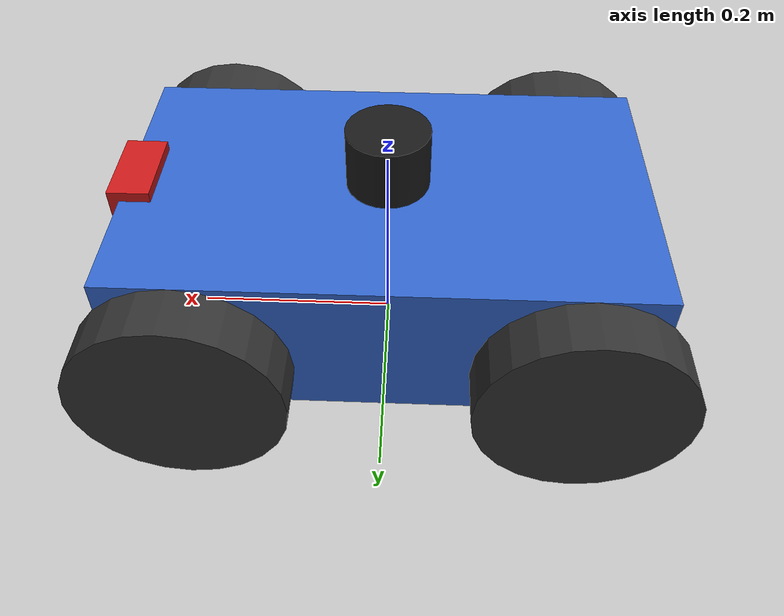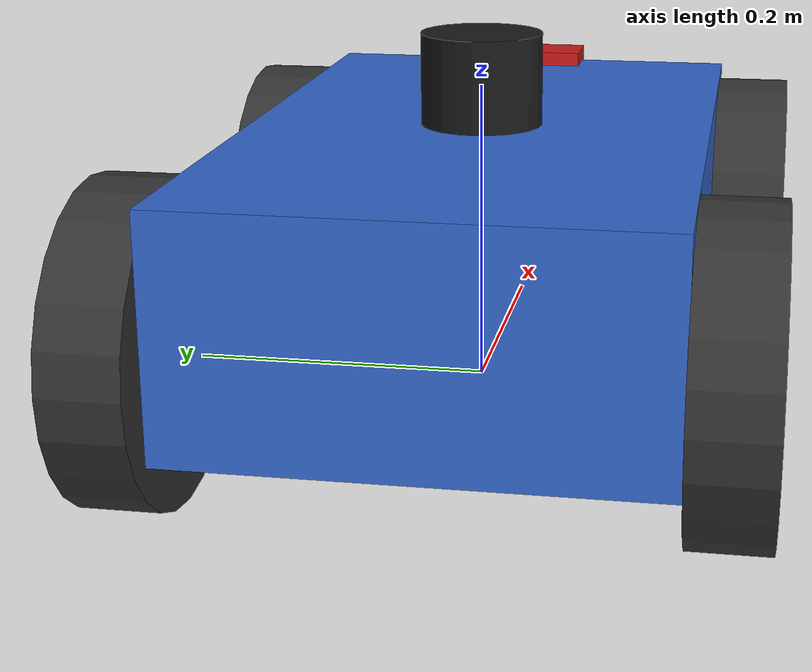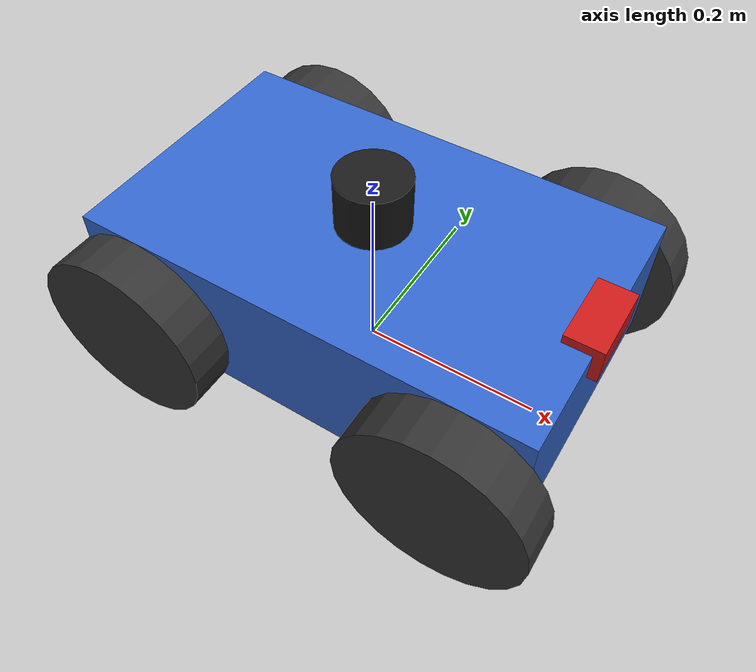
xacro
<?xml version="1.0"?>
<robot xmlns:xacro="http://www.ros.org/wiki/xacro" name="four_wheel_robot">

  <!-- ===== Constants / Properties ===== -->
  <xacro:property name="base_length"  value="0.50"/>
  <xacro:property name="base_width"   value="0.30"/>
  <xacro:property name="base_height"  value="0.15"/>
  <xacro:property name="base_mass"    value="5.0"/>

  <xacro:property name="wheel_radius" value="0.10"/>
  <xacro:property name="wheel_width"  value="0.05"/>
  <xacro:property name="wheel_mass"   value="0.5"/>

  <!-- Wheel x offset from base centre (half base length - small margin) -->
  <xacro:property name="wheel_x_offset" value="0.18"/>
  <!-- Wheel y offset from base centre (half base width + half wheel width) -->
  <xacro:property name="wheel_y_offset" value="0.175"/>
  <!-- Wheel sits on the ground: centre height = wheel_radius -->
  <xacro:property name="wheel_z_offset" value="-0.025"/>

  <!-- ===== Inertia macros ===== -->
  <xacro:macro name="box_inertia" params="m l w h">
    <inertial>
      <mass value="${m}"/>
      <inertia
        ixx="${m*(w*w+h*h)/12}" ixy="0" ixz="0"
        iyy="${m*(l*l+h*h)/12}" iyz="0"
        izz="${m*(l*l+w*w)/12}"/>
    </inertial>
  </xacro:macro>

  <xacro:macro name="cylinder_inertia" params="m r h">
    <inertial>
      <mass value="${m}"/>
      <inertia
        ixx="${m*(3*r*r+h*h)/12}" ixy="0" ixz="0"
        iyy="${m*(3*r*r+h*h)/12}" iyz="0"
        izz="${m*r*r/2}"/>
    </inertial>
  </xacro:macro>

  <xacro:macro name="sphere_inertia" params="m r">
    <inertial>
      <mass value="${m}"/>
      <inertia
        ixx="${2*m*r*r/5}" ixy="0" ixz="0"
        iyy="${2*m*r*r/5}" iyz="0"
        izz="${2*m*r*r/5}"/>
    </inertial>
  </xacro:macro>

  <!-- ===== Wheel macro ===== -->
  <!--
    prefix : fl | fr | rl | rr
    x_sign :  1 (front) | -1 (rear)
    y_sign :  1 (left)  | -1 (right)
  -->
  <xacro:macro name="wheel" params="prefix x_sign y_sign">
    <link name="${prefix}_wheel_link">
      <visual>
        <origin xyz="0 0 0" rpy="${pi/2} 0 0"/>
        <geometry>
          <cylinder radius="${wheel_radius}" length="${wheel_width}"/>
        </geometry>
        <material name="dark_grey">
          <color rgba="0.2 0.2 0.2 1.0"/>
        </material>
      </visual>
      <collision>
        <origin xyz="0 0 0" rpy="${pi/2} 0 0"/>
        <geometry>
          <cylinder radius="${wheel_radius}" length="${wheel_width}"/>
        </geometry>
      </collision>
      <xacro:cylinder_inertia m="${wheel_mass}" r="${wheel_radius}" h="${wheel_width}"/>
    </link>

    <joint name="${prefix}_wheel_joint" type="continuous">
      <parent link="base_link"/>
      <child  link="${prefix}_wheel_link"/>
      <origin xyz="${x_sign*wheel_x_offset} ${y_sign*wheel_y_offset} ${wheel_z_offset}"
              rpy="0 0 0"/>
      <axis xyz="0 1 0"/>
      <dynamics damping="0.1" friction="0.1"/>
      <limit effort="10.0" velocity="5.0"/>
    </joint>
  </xacro:macro>

  <!-- ===== base_footprint ===== -->
  <link name="base_footprint"/>

  <joint name="base_footprint_joint" type="fixed">
    <parent link="base_footprint"/>
    <child  link="base_link"/>
    <origin xyz="0 0 ${wheel_radius}" rpy="0 0 0"/>
  </joint>

  <!-- ===== Base link ===== -->
  <link name="base_link">
    <visual>
      <origin xyz="0 0 0" rpy="0 0 0"/>
      <geometry>
        <box size="${base_length} ${base_width} ${base_height}"/>
      </geometry>
      <material name="blue">
        <color rgba="0.2 0.4 0.8 1.0"/>
      </material>
    </visual>
    <collision>
      <origin xyz="0 0 0" rpy="0 0 0"/>
      <geometry>
        <box size="${base_length} ${base_width} ${base_height}"/>
      </geometry>
    </collision>
    <xacro:box_inertia m="${base_mass}" l="${base_length}" w="${base_width}" h="${base_height}"/>
  </link>

  <!-- ===== Wheels ===== -->
  <xacro:wheel prefix="fl" x_sign=" 1" y_sign=" 1"/>
  <xacro:wheel prefix="fr" x_sign=" 1" y_sign="-1"/>
  <xacro:wheel prefix="rl" x_sign="-1" y_sign=" 1"/>
  <xacro:wheel prefix="rr" x_sign="-1" y_sign="-1"/>

  <!-- ===== Laser scanner ===== -->
  <link name="lidar_link">
    <visual>
      <origin xyz="0 0 0" rpy="0 0 0"/>
      <geometry>
        <cylinder radius="0.04" length="0.06"/>
      </geometry>
      <material name="black">
        <color rgba="0.1 0.1 0.1 1.0"/>
      </material>
    </visual>
    <collision>
      <origin xyz="0 0 0" rpy="0 0 0"/>
      <geometry>
        <cylinder radius="0.04" length="0.06"/>
      </geometry>
    </collision>
    <xacro:cylinder_inertia m="0.1" r="0.04" h="0.06"/>
  </link>

  <joint name="lidar_joint" type="fixed">
    <parent link="base_link"/>
    <child  link="lidar_link"/>
    <origin xyz="0.0 0.0 ${base_height/2 + 0.03}" rpy="0 0 0"/>
  </joint>

  <!-- ===== Camera ===== -->
  <link name="camera_link">
    <visual>
      <origin xyz="0 0 0" rpy="0 0 0"/>
      <geometry>
        <box size="0.04 0.08 0.04"/>
      </geometry>
      <material name="red">
        <color rgba="0.8 0.1 0.1 1.0"/>
      </material>
    </visual>
    <collision>
      <origin xyz="0 0 0" rpy="0 0 0"/>
      <geometry>
        <box size="0.04 0.08 0.04"/>
      </geometry>
    </collision>
    <xacro:box_inertia m="0.05" l="0.04" w="0.08" h="0.04"/>
  </link>

  <joint name="camera_joint" type="fixed">
    <parent link="base_link"/>
    <child  link="camera_link"/>
    <origin xyz="${base_length/2 - 0.01} 0.0 ${base_height/2 - 0.01}" rpy="0 0 0"/>
  </joint>

  <!-- Camera optical frame (Z forward, X right, Y down) -->
  <link name="camera_optical_link"/>
  <joint name="camera_optical_joint" type="fixed">
    <parent link="camera_link"/>
    <child  link="camera_optical_link"/>
    <origin xyz="0 0 0" rpy="${-pi/2} 0 ${-pi/2}"/>
  </joint>

  <!-- ===== IMU ===== -->
  <link name="imu_link">
    <visual>
      <origin xyz="0 0 0" rpy="0 0 0"/>
      <geometry>
        <box size="0.03 0.03 0.01"/>
      </geometry>
      <material name="green">
        <color rgba="0.1 0.8 0.1 1.0"/>
      </material>
    </visual>
    <collision>
      <origin xyz="0 0 0" rpy="0 0 0"/>
      <geometry>
        <box size="0.03 0.03 0.01"/>
      </geometry>
    </collision>
    <xacro:box_inertia m="0.01" l="0.03" w="0.03" h="0.01"/>
  </link>

  <joint name="imu_joint" type="fixed">
    <parent link="base_link"/>
    <child  link="imu_link"/>
    <origin xyz="0.0 0.0 0.0" rpy="0 0 0"/>
  </joint>

  <!-- Include Gazebo-specific elements -->
  <xacro:include filename="$(find nav2)/urdf/gazebo.xacro"/>

</robot>
